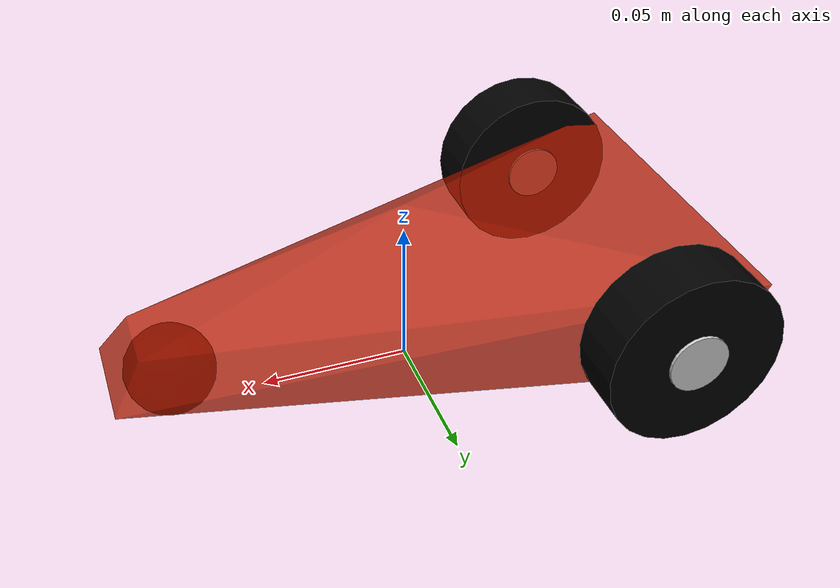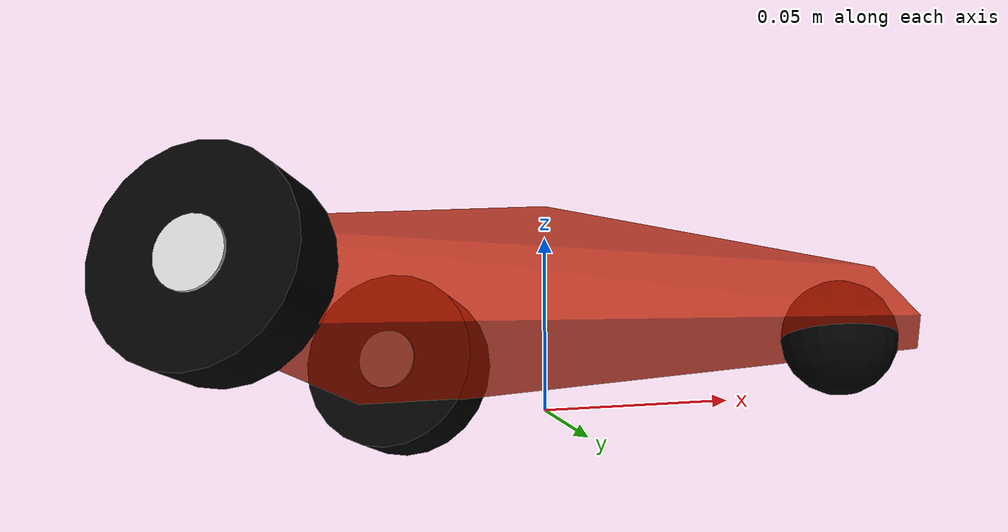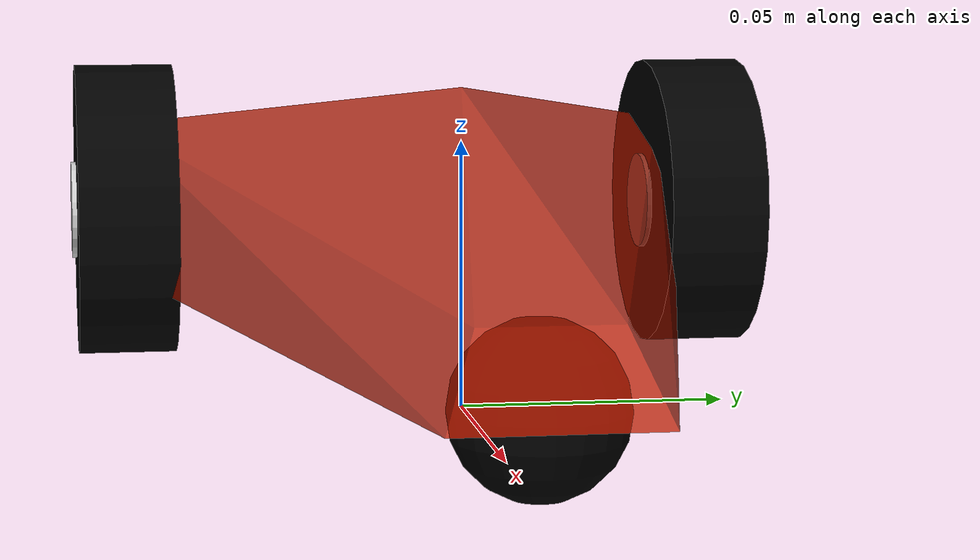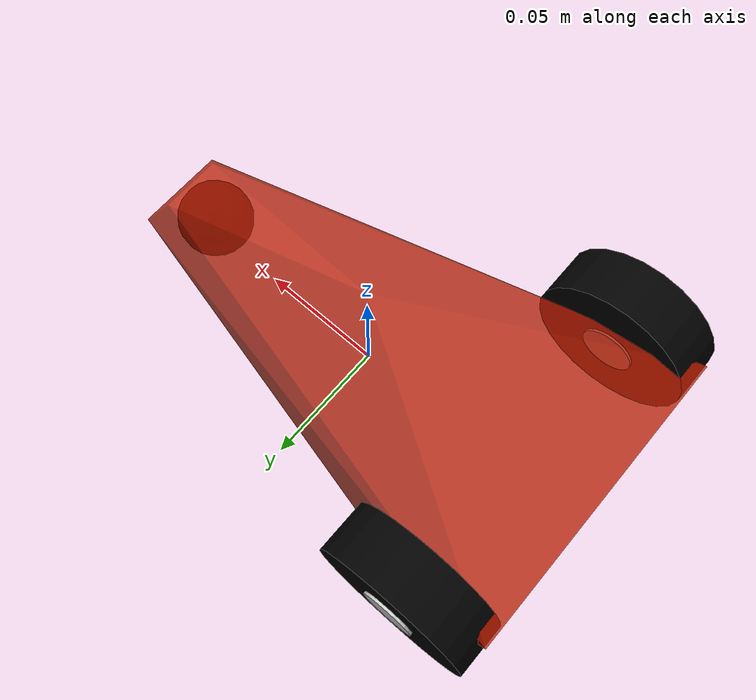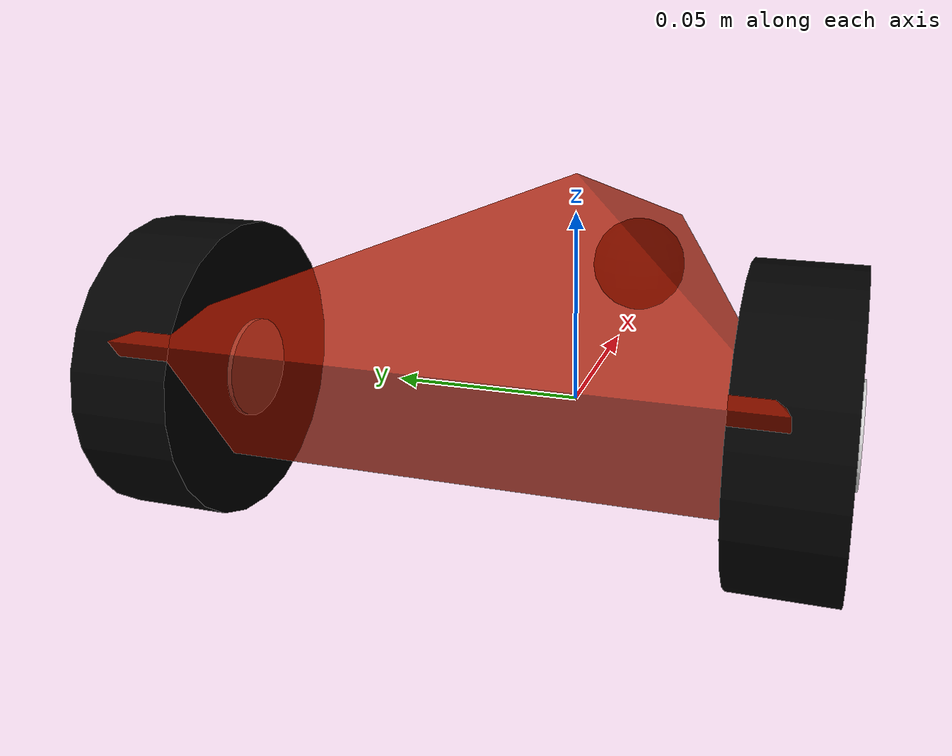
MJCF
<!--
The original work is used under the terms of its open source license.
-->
<?xml version="1.0" encoding="utf-8"?>
<mujoco model="car">
  <compiler eulerseq="XYZ" fitaabb="true" angle="radian"  autolimits="true"/>
  <option timestep="0.001" gravity="0 0 -9.81"/>
  <asset>
    <texture name="skybox" type="skybox" builtin="gradient" rgb1="0.2 0.3 0.4" rgb2="0 0 0" width="1000" height="1000" mark="random" random="0.001" markrgb="1 1 1"/>
    <texture type="2d" name="groundplane" builtin="checker" mark="edge" rgb1="0.2 0.3 0.4" rgb2="0.1 0.2 0.3" markrgb="0.8 0.8 0.8" width="1000" height="1000"/>
    <material name="groundplane" texture="groundplane" texuniform="true" texrepeat="5 5" reflectance="0.2"/>
    <mesh name="chasis" scale=".01 .006 .0015"
      vertex=" 9   2   0
              -10  10  10
               9  -2   0
               10  3  -10
               10 -3  -10
              -8   10 -10
              -10 -10  10
              -8  -10 -10
               0   0   20"/>
  </asset>

  <default>
    <joint damping=".01"/>
  </default>

  <worldbody>
    <geom name="floor" pos="0 0 -0.5" size="0 0 1" type="plane" material="groundplane"/>
    <light directional="true" diffuse=".8 .8 .8" specular=".2 .2 .2" pos="0 0 5" dir="0 0 -1"/>
    <body name="car" pos="0 0 .03">
      <freejoint/>
      <light name="top light" pos="0 0 2" mode="trackcom" diffuse=".4 .4 .4"/>
      <geom name="chasis" type="mesh" mesh="chasis" rgba="0.7 0.1 0 0.8"/>
      <geom name="front wheel" pos=".08 0 -.015" type="sphere" size=".015" condim="1" priority="1" rgba="0 0 0 1"/>
      <light name="front light" pos=".1 0 .02" dir="2 0 -1" diffuse="1 1 1"/>
      <body name="left wheel" pos="-.07 .06 0" zaxis="0 1 0">
        <joint name="left_wheel" type="hinge"/>
        <geom type="cylinder" size=".03 .01" rgba="0 0 0 1"/>
        <geom type="cylinder" size=".01 .011" rgba="0.8 0.8 0.8 1"/>
      </body>
      <body name="right wheel" pos="-.07 -.06 0" zaxis="0 1 0">
        <joint name="right_wheel" type="hinge"/>
        <geom type="cylinder" size=".03 .01" rgba="0 0 0 1"/>
        <geom type="cylinder" size=".01 .011" rgba="0.8 0.8 0.8 1"/>
      </body>
    </body>
  </worldbody>

  <actuator>
    <motor name="right_motor" joint="right_wheel" ctrlrange="-1 1"/>
    <motor name="left_motor" joint="left_wheel" ctrlrange="-1 1"/>
  </actuator>

  <sensor>
    <jointvel name="right_vel_sensor" joint="right_wheel"/>
    <jointvel name="left_vel_sensor" joint="left_wheel"/>
    <jointactuatorfrc name="right_frc_sensor" joint="right_wheel"/>
    <jointactuatorfrc name="left_frc_sensor" joint="left_wheel"/>
  </sensor>
</mujoco>
